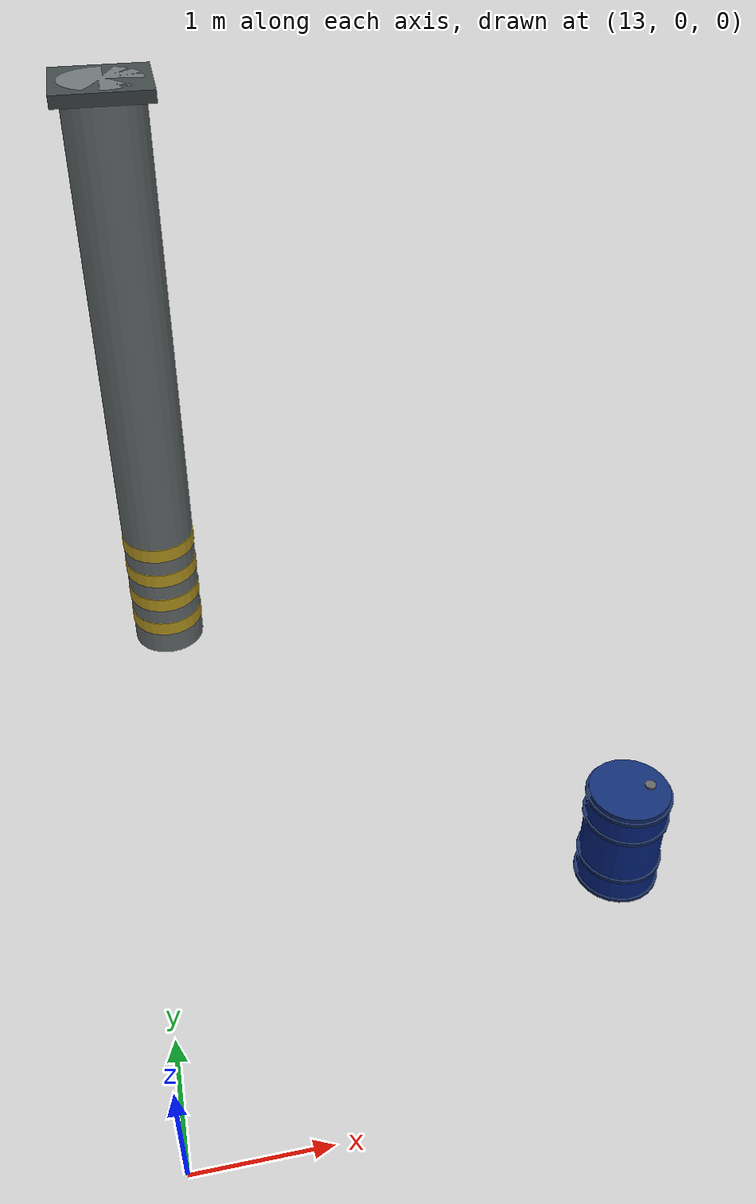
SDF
<sdf version="1.5">
 <world name="default">
  <include><uri>model://sun</uri></include>
  <model name="utility_pillar_northeast">
   <static>true</static>
   <pose>13.328 5.688 0.003 0 0 0</pose>
   <link name="structure">
    <visual name="tall_pillar">
     <pose>0 0 2.75 0 0 0</pose>
     <geometry><cylinder><radius>0.34</radius><length>5.5</length></cylinder></geometry>
     <material>
      <ambient>0.43 0.46 0.46 1</ambient>
      <diffuse>0.43 0.46 0.46 1</diffuse>
      <specular>0.04 0.04 0.04 1</specular>
     </material>
    </visual>
    <collision name="tall_pillar_collision">
     <pose>0 0 2.75 0 0 0</pose>
     <geometry><cylinder><radius>0.34</radius><length>5.5</length></cylinder></geometry>
     <surface><friction><ode><mu>1.0</mu><mu2>1.0</mu2></ode></friction></surface>
    </collision>
    <visual name="top_cap">
     <pose>0 0 5.45 0 0 0</pose>
     <geometry><box><size>0.8 0.8 0.1</size></box></geometry>
     <material>
      <ambient>0.25 0.28 0.28 1</ambient>
      <diffuse>0.25 0.28 0.28 1</diffuse>
      <specular>0.04 0.04 0.04 1</specular>
     </material>
    </visual>
    <visual name="hazard_ring_0">
     <pose>0 0 0.3 0 0 0</pose>
     <geometry><cylinder><radius>0.345</radius><length>0.14</length></cylinder></geometry>
     <material>
      <ambient>0.8 0.66 0.14 1</ambient>
      <diffuse>0.8 0.66 0.14 1</diffuse>
      <specular>0.04 0.04 0.04 1</specular>
     </material>
    </visual>
    <visual name="hazard_ring_1">
     <pose>0 0 0.6 0 0 0</pose>
     <geometry><cylinder><radius>0.345</radius><length>0.14</length></cylinder></geometry>
     <material>
      <ambient>0.8 0.66 0.14 1</ambient>
      <diffuse>0.8 0.66 0.14 1</diffuse>
      <specular>0.04 0.04 0.04 1</specular>
     </material>
    </visual>
    <visual name="hazard_ring_2">
     <pose>0 0 0.9 0 0 0</pose>
     <geometry><cylinder><radius>0.345</radius><length>0.14</length></cylinder></geometry>
     <material>
      <ambient>0.8 0.66 0.14 1</ambient>
      <diffuse>0.8 0.66 0.14 1</diffuse>
      <specular>0.04 0.04 0.04 1</specular>
     </material>
    </visual>
    <visual name="hazard_ring_3">
     <pose>0 0 1.2 0 0 0</pose>
     <geometry><cylinder><radius>0.345</radius><length>0.14</length></cylinder></geometry>
     <material>
      <ambient>0.8 0.66 0.14 1</ambient>
      <diffuse>0.8 0.66 0.14 1</diffuse>
      <specular>0.04 0.04 0.04 1</specular>
     </material>
    </visual>
   </link>
  </model>
  <model name="blue_drum_rear">
   <static>true</static>
   <pose>16.7 1.8 0.003 0 0 0</pose>
   <link name="structure">
    <visual name="drum_body">
     <pose>0 0 0.48 0 0 0</pose>
     <geometry><cylinder><radius>0.32</radius><length>0.94</length></cylinder></geometry>
     <material>
      <ambient>0.03 0.15 0.53 1</ambient>
      <diffuse>0.03 0.15 0.53 1</diffuse>
      <specular>0.04 0.04 0.04 1</specular>
     </material>
    </visual>
    <collision name="drum_body_collision">
     <pose>0 0 0.48 0 0 0</pose>
     <geometry><cylinder><radius>0.32</radius><length>0.94</length></cylinder></geometry>
     <surface><friction><ode><mu>1.0</mu><mu2>1.0</mu2></ode></friction></surface>
    </collision>
    <visual name="drum_ring_0">
     <pose>0 0 0.04 0 0 0</pose>
     <geometry><cylinder><radius>0.342</radius><length>0.026</length></cylinder></geometry>
     <material>
      <ambient>0.1 0.19 0.4 1</ambient>
      <diffuse>0.1 0.19 0.4 1</diffuse>
      <specular>0.04 0.04 0.04 1</specular>
     </material>
    </visual>
    <visual name="drum_ring_1">
     <pose>0 0 0.27 0 0 0</pose>
     <geometry><cylinder><radius>0.342</radius><length>0.026</length></cylinder></geometry>
     <material>
      <ambient>0.1 0.19 0.4 1</ambient>
      <diffuse>0.1 0.19 0.4 1</diffuse>
      <specular>0.04 0.04 0.04 1</specular>
     </material>
    </visual>
    <visual name="drum_ring_2">
     <pose>0 0 0.72 0 0 0</pose>
     <geometry><cylinder><radius>0.342</radius><length>0.026</length></cylinder></geometry>
     <material>
      <ambient>0.1 0.19 0.4 1</ambient>
      <diffuse>0.1 0.19 0.4 1</diffuse>
      <specular>0.04 0.04 0.04 1</specular>
     </material>
    </visual>
    <visual name="drum_ring_3">
     <pose>0 0 0.94 0 0 0</pose>
     <geometry><cylinder><radius>0.342</radius><length>0.026</length></cylinder></geometry>
     <material>
      <ambient>0.1 0.19 0.4 1</ambient>
      <diffuse>0.1 0.19 0.4 1</diffuse>
      <specular>0.04 0.04 0.04 1</specular>
     </material>
    </visual>
    <visual name="drum_lid">
     <pose>0 0 0.971 0 0 0</pose>
     <geometry><cylinder><radius>0.32</radius><length>0.035</length></cylinder></geometry>
     <material>
      <ambient>0.07 0.18 0.46 1</ambient>
      <diffuse>0.07 0.18 0.46 1</diffuse>
      <specular>0.04 0.04 0.04 1</specular>
     </material>
    </visual>
    <visual name="lid_bung">
     <pose>0.17 0 0.997 0 0 0</pose>
     <geometry><cylinder><radius>0.043</radius><length>0.018</length></cylinder></geometry>
     <material>
      <ambient>0.39 0.4 0.4 1</ambient>
      <diffuse>0.39 0.4 0.4 1</diffuse>
      <specular>0.04 0.04 0.04 1</specular>
     </material>
    </visual>
   </link>
  </model>
 </world>
</sdf>
